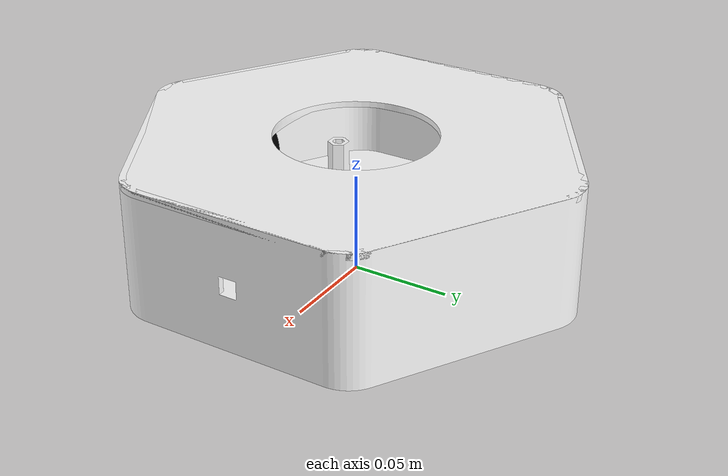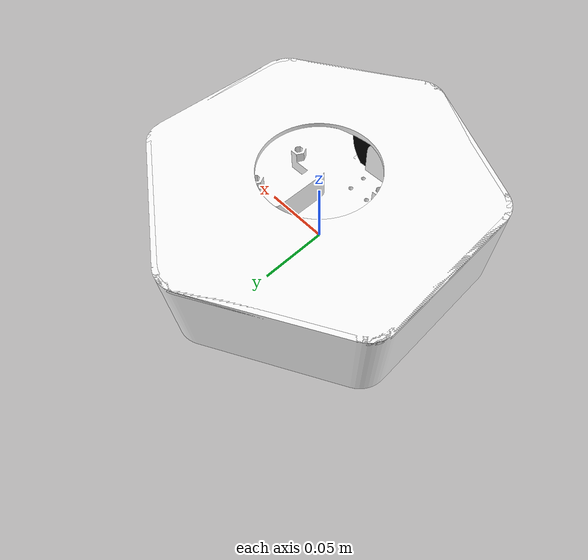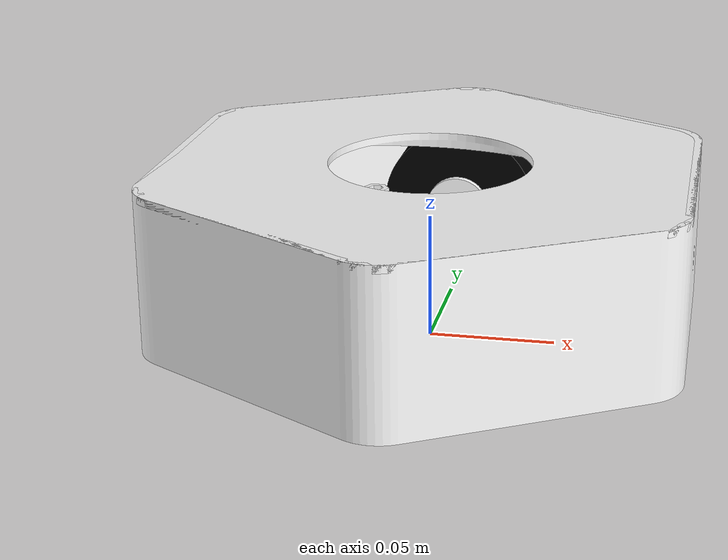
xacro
<?xml version="1.0" ?>
<robot name="ros" xmlns:xacro="http://www.ros.org/wiki/xacro">

<material name="red">
  <color rgba="1.0 0.0 0.0 1.0"/>
</material>

<material name="yellow">
  <color rgba="1.0 1.0 0.0 1.0"/>
</material>

<material name="black">
  <color rgba="0.0 0.0 0.0 1.0"/>
</material>

<material name="white">
  <color rgba="1.0 1.0 1.0 1.0"/>
</material>

<!-- base link -->
<link name="base_link">
</link>

<!-- footprint -->
<joint name="base_footprint_joint" type="fixed">
  <parent link="base_link"/>
  <child link="base_footprint"/>
  <origin xyz="0 0 0" rpy="0 0 0"/>
</joint>

<link name="base_footprint">
</link>

<!-- chassis -->
<link name="chassis">
  <inertial>
    <origin xyz="0.00140474737097935 -6.219336425747662e-07 0.024661833569020065" rpy="0 0 0"/>
    <mass value="0.266729885981569"/>
    <inertia ixx="0.010488" iyy="0.011039" izz="0.019675" ixy="0.0" iyz="0.0" ixz="-3.1e-05"/>
  </inertial>
  <visual>
    <origin xyz="0 0 0" rpy="0 0 0"/>
    <geometry>
      <mesh filename="file://$(find bot)/meshes/chassis.stl" scale="0.001 0.001 0.001"/>
    </geometry>
    <material name="white"/>
  </visual>
  <collision>
    <origin xyz="0 0 0" rpy="0 0 0"/>
    <geometry>
      <mesh filename="file://$(find bot)/meshes/chassis.stl" scale="0.001 0.001 0.001"/>
    </geometry>
  </collision>
</link>

<joint name="chassis_joint" type="fixed">
  <origin xyz="-0.0 0.0 0.0" rpy="0 0 0"/>
  <parent link="base_link"/>
  <child link="chassis"/>
</joint>

<gazebo reference="chassis">
  <material>Gazebo/White</material>
  <mu1>0.2</mu1>
  <mu2>0.2</mu2>
</gazebo>

<!--cover-->
<link name="cover">
  <inertial>
    <origin xyz="-0.0005540993794198132 -7.49512112246723e-11 0.05665370882042188" rpy="0 0 0"/>
    <mass value="0.0747792277920927"/>
    <inertia ixx="0.005334" iyy="0.005244" izz="0.010565" ixy="0.0" iyz="-0.0" ixz="-1e-06"/>
  </inertial>
  <visual>
    <origin xyz="-0.0 -0.0 -0.0125" rpy="0 0 0"/>
    <geometry>
      <mesh filename="file://$(find bot)/meshes/cover.stl" scale="0.001 0.001 0.001"/>
    </geometry>
    <material name="white"/>
  </visual>
  <collision>
    <origin xyz="-0.0 -0.0 -0.0125" rpy="0 0 0"/>
    <geometry>
      <mesh filename="file://$(find bot)/meshes/cover.stl" scale="0.001 0.001 0.001"/>
    </geometry>
  </collision>
</link>

<joint name="cover_joint" type="fixed">
  <origin xyz="0.0 0.0 0.0125" rpy="0 0 0"/>
  <parent link="chassis"/>
  <child link="cover"/>
</joint>

<!-- left rare wheel -->
<link name="LR_wheel">
  <inertial>
    <origin xyz="5.01953530179549e-14 -0.013499999999999956 0.0" rpy="0 0 0"/>
    <mass value="0.173050413536889"/>
    <inertia ixx="0.000227" iyy="0.000371" izz="0.000227" ixy="-0.0" iyz="-0.0" ixz="-0.0"/>
  </inertial>
  <visual>
    <origin xyz="-0.0 -0.095 -0.0325" rpy="0 0 0"/>
    <geometry>
      <mesh filename="file://$(find bot)/meshes/LR_wheel.stl" scale="0.001 0.001 0.001"/>
    </geometry>
    <material name="black"/>
  </visual>
  <collision>
    <origin xyz="-0.0 -0.095 -0.0325" rpy="0 0 0"/>
    <geometry>
      <mesh filename="file://$(find bot)/meshes/LR_wheel.stl" scale="0.001 0.001 0.001"/>
    </geometry>
  </collision>
</link>

<joint name="LR_joint" type="continuous">
  <origin xyz="0.0 0.095 0.0325" rpy="0 0 0"/>
  <parent link="chassis"/>
  <child link="LR_wheel"/>
  <axis xyz="0.0 1.0 0.0"/>
</joint>

<gazebo reference="LR_wheel">
  <material>Gazebo/Black</material>
</gazebo>

<!-- left front wheel -->
<link name="LF_wheel">
  <inertial>
    <origin xyz="-3.586044114434195e-09 -1.476954639315213e-17 -0.0028339309460486484" rpy="0 0 0"/>
    <mass value="0.006490907413434929"/>
    <inertia ixx="0.0" iyy="0.0" izz="0.0" ixy="-0.0" iyz="-0.0" ixz="-0.0"/>
  </inertial>
  <visual>
    <origin xyz="0.0755 -0.0 -0.0075" rpy="0 0 0"/>
    <geometry>
      <mesh filename="file://$(find bot)/meshes/LF_wheel.stl" scale="0.001 0.001 0.001"/>
    </geometry>
    <material name="black"/>
  </visual>
  <collision>
    <origin xyz="0.0755 -0.0 -0.0075" rpy="0 0 0"/>
    <geometry>
      <mesh filename="file://$(find bot)/meshes/LF_wheel.stl" scale="0.001 0.001 0.001"/>
    </geometry>
  </collision>
</link>

<joint name="LF_joint" type="fixed">
  <origin xyz="-0.0755 0.0 0.0075" rpy="0 0 0"/>
  <parent link="chassis"/>
  <child link="LF_wheel"/>
</joint>

<gazebo reference="LF_wheel">
  <material>Gazebo/Black</material>
  <mu1>0.2</mu1>
  <mu2>0.2</mu2>
</gazebo>

<!-- right front wheel -->
<link name="RF_wheel">
  <inertial>
    <origin xyz="-1.6875429525997632e-09 -4.028058107223308e-18 -0.002833930946048643" rpy="0 0 0"/>
    <mass value="0.006490907413434929"/>
    <inertia ixx="0.0" iyy="0.0" izz="0.0" ixy="-0.0" iyz="-0.0" ixz="-0.0"/>
  </inertial>
  <visual>
    <origin xyz="-0.0755 -0.0 -0.0075" rpy="0 0 0"/>
    <geometry>
      <mesh filename="file://$(find bot)/meshes/RF_wheel.stl" scale="0.001 0.001 0.001"/>
    </geometry>
    <material name="black"/>
  </visual>
  <collision>
    <origin xyz="-0.0755 -0.0 -0.0075" rpy="0 0 0"/>
    <geometry>
      <mesh filename="file://$(find bot)/meshes/RF_wheel.stl" scale="0.001 0.001 0.001"/>
    </geometry>
  </collision>
</link>

<joint name="RF_joint" type="fixed">
  <origin xyz="0.0755 0.0 0.0075" rpy="0 0 0"/>
  <parent link="chassis"/>
  <child link="RF_wheel"/>
</joint>

<gazebo reference="RF_wheel">
  <material>Gazebo/Black</material>
  <mu1>0.2</mu1>
  <mu2>0.2</mu2>
</gazebo>

<!-- right rare wheel -->
<link name="RR_wheel">
  <inertial>
    <origin xyz="-2.5081206055828184e-14 0.013499999999999984 6.938893903907228e-18" rpy="0 0 0"/>
    <mass value="0.1773050413536866"/>
    <inertia ixx="0.000227" iyy="0.000371" izz="0.000227" ixy="-0.0" iyz="0.0" ixz="0.0"/>
  </inertial>
  <visual>
    <origin xyz="-0.0 0.095 -0.0325" rpy="0 0 0"/>
    <geometry>
      <mesh filename="file://$(find bot)/meshes/RR_wheel.stl" scale="0.001 0.001 0.001"/>
    </geometry>
    <material name="black"/>
  </visual>
  <collision>
    <origin xyz="-0.0 0.095 -0.0325" rpy="0 0 0"/>
    <geometry>
      <mesh filename="file://$(find bot)/meshes/RR_wheel.stl" scale="0.001 0.001 0.001"/>
    </geometry>
  </collision>
</link>

<joint name="RR_joint" type="continuous">
  <origin xyz="0.0 -0.095 0.0325" rpy="0 0 0"/>
  <parent link="chassis"/>
  <child link="RR_wheel"/>
  <axis xyz="0.0 1.0 0.0"/>
</joint>

<gazebo reference="RR_wheel">
  <material>Gazebo/Black</material>
</gazebo>

</robot>
